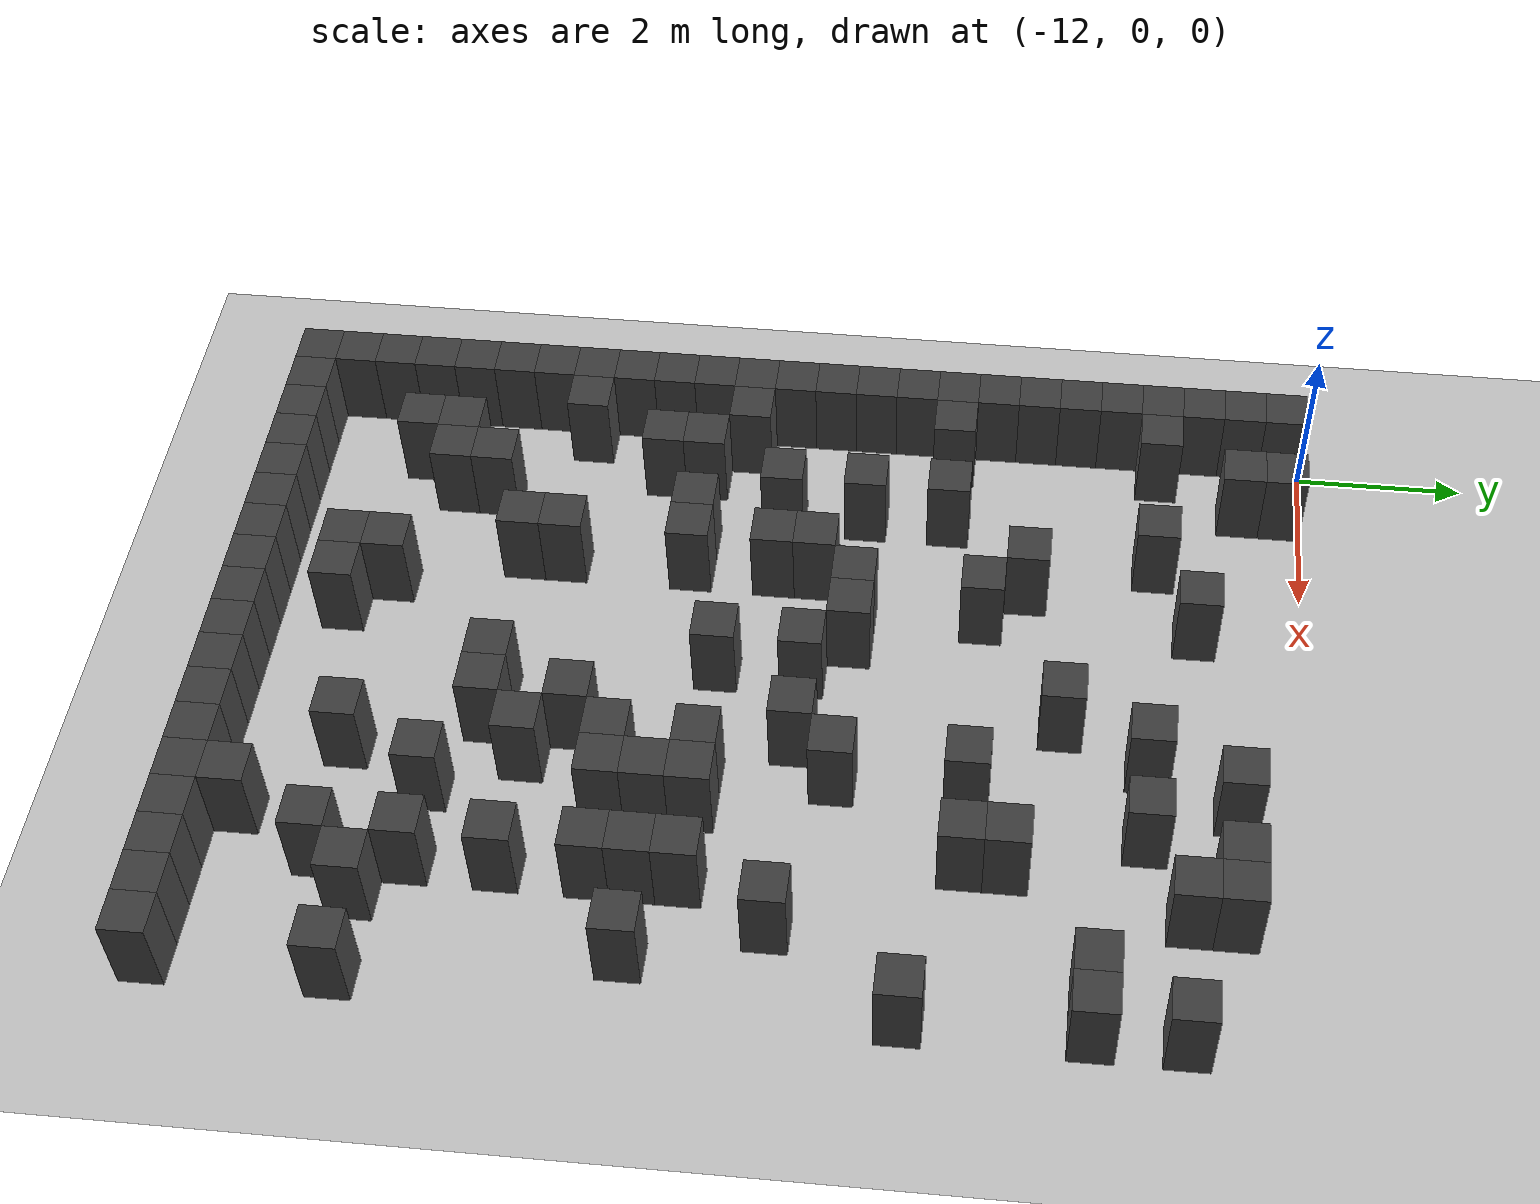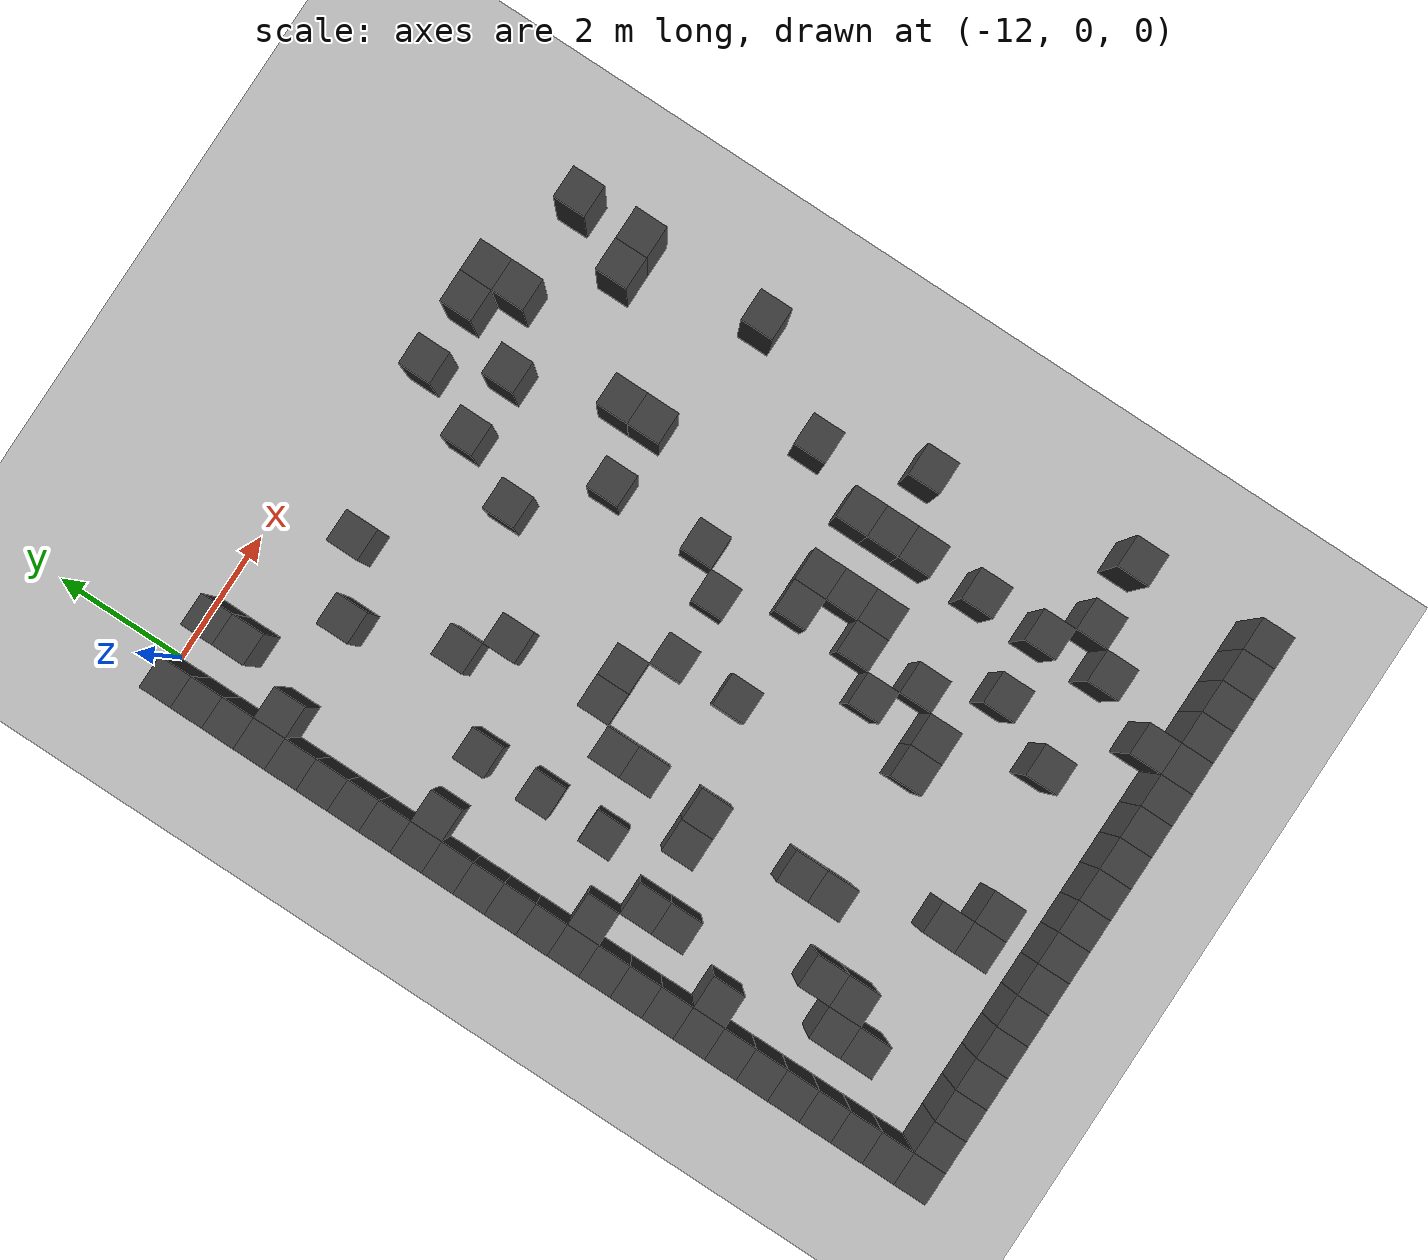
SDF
<sdf version="1.7">
 <world name="map_3158">
  <model name="ground_plane">
   <static>true</static>
   <link name="link">
    <collision name="collision">
     <geometry><plane><normal>0 0 1</normal><size>200 200</size></plane></geometry>
    </collision>
    <visual name="visual">
     <geometry><plane><normal>0 0 1</normal><size>200 200</size></plane></geometry>
     <material><ambient>0.8 0.8 0.8 1</ambient><diffuse>0.8 0.8 0.8 1</diffuse></material>
    </visual>
   </link>
  </model>
  <model name="maze_environment">
   <static>true</static>
   <link name="wall_278">
    <pose>-12.250 -0.250 0.500 0 0 0</pose>
    <collision name="col"><geometry><box><size>0.5 0.5 1.0</size></box></geometry></collision>
    <visual name="vis">
     <geometry><box><size>0.5 0.5 1.0</size></box></geometry>
     <material><ambient>0.15 0.15 0.15 1</ambient><diffuse>0.25 0.25 0.25 1</diffuse></material>
    </visual>
   </link>
   <link name="wall_279">
    <pose>-11.250 -0.250 0.500 0 0 0</pose>
    <collision name="col"><geometry><box><size>0.5 0.5 1.0</size></box></geometry></collision>
    <visual name="vis">
     <geometry><box><size>0.5 0.5 1.0</size></box></geometry>
     <material><ambient>0.15 0.15 0.15 1</ambient><diffuse>0.25 0.25 0.25 1</diffuse></material>
    </visual>
   </link>
   <link name="wall_291">
    <pose>-12.250 -0.750 0.500 0 0 0</pose>
    <collision name="col"><geometry><box><size>0.5 0.5 1.0</size></box></geometry></collision>
    <visual name="vis">
     <geometry><box><size>0.5 0.5 1.0</size></box></geometry>
     <material><ambient>0.15 0.15 0.15 1</ambient><diffuse>0.25 0.25 0.25 1</diffuse></material>
    </visual>
   </link>
   <link name="wall_292">
    <pose>-11.250 -0.750 0.500 0 0 0</pose>
    <collision name="col"><geometry><box><size>0.5 0.5 1.0</size></box></geometry></collision>
    <visual name="vis">
     <geometry><box><size>0.5 0.5 1.0</size></box></geometry>
     <material><ambient>0.15 0.15 0.15 1</ambient><diffuse>0.25 0.25 0.25 1</diffuse></material>
    </visual>
   </link>
   <link name="wall_293">
    <pose>-6.750 -0.750 0.500 0 0 0</pose>
    <collision name="col"><geometry><box><size>0.5 0.5 1.0</size></box></geometry></collision>
    <visual name="vis">
     <geometry><box><size>0.5 0.5 1.0</size></box></geometry>
     <material><ambient>0.15 0.15 0.15 1</ambient><diffuse>0.25 0.25 0.25 1</diffuse></material>
    </visual>
   </link>
   <link name="wall_294">
    <pose>-5.750 -0.750 0.500 0 0 0</pose>
    <collision name="col"><geometry><box><size>0.5 0.5 1.0</size></box></geometry></collision>
    <visual name="vis">
     <geometry><box><size>0.5 0.5 1.0</size></box></geometry>
     <material><ambient>0.15 0.15 0.15 1</ambient><diffuse>0.25 0.25 0.25 1</diffuse></material>
    </visual>
   </link>
   <link name="wall_295">
    <pose>-5.250 -0.750 0.500 0 0 0</pose>
    <collision name="col"><geometry><box><size>0.5 0.5 1.0</size></box></geometry></collision>
    <visual name="vis">
     <geometry><box><size>0.5 0.5 1.0</size></box></geometry>
     <material><ambient>0.15 0.15 0.15 1</ambient><diffuse>0.25 0.25 0.25 1</diffuse></material>
    </visual>
   </link>
   <link name="wall_300">
    <pose>-12.250 -1.250 0.500 0 0 0</pose>
    <collision name="col"><geometry><box><size>0.5 0.5 1.0</size></box></geometry></collision>
    <visual name="vis">
     <geometry><box><size>0.5 0.5 1.0</size></box></geometry>
     <material><ambient>0.15 0.15 0.15 1</ambient><diffuse>0.25 0.25 0.25 1</diffuse></material>
    </visual>
   </link>
   <link name="wall_301">
    <pose>-9.250 -1.250 0.500 0 0 0</pose>
    <collision name="col"><geometry><box><size>0.5 0.5 1.0</size></box></geometry></collision>
    <visual name="vis">
     <geometry><box><size>0.5 0.5 1.0</size></box></geometry>
     <material><ambient>0.15 0.15 0.15 1</ambient><diffuse>0.25 0.25 0.25 1</diffuse></material>
    </visual>
   </link>
   <link name="wall_302">
    <pose>-5.250 -1.250 0.500 0 0 0</pose>
    <collision name="col"><geometry><box><size>0.5 0.5 1.0</size></box></geometry></collision>
    <visual name="vis">
     <geometry><box><size>0.5 0.5 1.0</size></box></geometry>
     <material><ambient>0.15 0.15 0.15 1</ambient><diffuse>0.25 0.25 0.25 1</diffuse></material>
    </visual>
   </link>
   <link name="wall_303">
    <pose>-3.750 -1.250 0.500 0 0 0</pose>
    <collision name="col"><geometry><box><size>0.5 0.5 1.0</size></box></geometry></collision>
    <visual name="vis">
     <geometry><box><size>0.5 0.5 1.0</size></box></geometry>
     <material><ambient>0.15 0.15 0.15 1</ambient><diffuse>0.25 0.25 0.25 1</diffuse></material>
    </visual>
   </link>
   <link name="wall_308">
    <pose>-12.250 -1.750 0.500 0 0 0</pose>
    <collision name="col"><geometry><box><size>0.5 0.5 1.0</size></box></geometry></collision>
    <visual name="vis">
     <geometry><box><size>0.5 0.5 1.0</size></box></geometry>
     <material><ambient>0.15 0.15 0.15 1</ambient><diffuse>0.25 0.25 0.25 1</diffuse></material>
    </visual>
   </link>
   <link name="wall_309">
    <pose>-11.750 -1.750 0.500 0 0 0</pose>
    <collision name="col"><geometry><box><size>0.5 0.5 1.0</size></box></geometry></collision>
    <visual name="vis">
     <geometry><box><size>0.5 0.5 1.0</size></box></geometry>
     <material><ambient>0.15 0.15 0.15 1</ambient><diffuse>0.25 0.25 0.25 1</diffuse></material>
    </visual>
   </link>
   <link name="wall_310">
    <pose>-10.250 -1.750 0.500 0 0 0</pose>
    <collision name="col"><geometry><box><size>0.5 0.5 1.0</size></box></geometry></collision>
    <visual name="vis">
     <geometry><box><size>0.5 0.5 1.0</size></box></geometry>
     <material><ambient>0.15 0.15 0.15 1</ambient><diffuse>0.25 0.25 0.25 1</diffuse></material>
    </visual>
   </link>
   <link name="wall_311">
    <pose>-7.250 -1.750 0.500 0 0 0</pose>
    <collision name="col"><geometry><box><size>0.5 0.5 1.0</size></box></geometry></collision>
    <visual name="vis">
     <geometry><box><size>0.5 0.5 1.0</size></box></geometry>
     <material><ambient>0.15 0.15 0.15 1</ambient><diffuse>0.25 0.25 0.25 1</diffuse></material>
    </visual>
   </link>
   <link name="wall_312">
    <pose>-6.250 -1.750 0.500 0 0 0</pose>
    <collision name="col"><geometry><box><size>0.5 0.5 1.0</size></box></geometry></collision>
    <visual name="vis">
     <geometry><box><size>0.5 0.5 1.0</size></box></geometry>
     <material><ambient>0.15 0.15 0.15 1</ambient><diffuse>0.25 0.25 0.25 1</diffuse></material>
    </visual>
   </link>
   <link name="wall_316">
    <pose>-12.250 -2.250 0.500 0 0 0</pose>
    <collision name="col"><geometry><box><size>0.5 0.5 1.0</size></box></geometry></collision>
    <visual name="vis">
     <geometry><box><size>0.5 0.5 1.0</size></box></geometry>
     <material><ambient>0.15 0.15 0.15 1</ambient><diffuse>0.25 0.25 0.25 1</diffuse></material>
    </visual>
   </link>
   <link name="wall_317">
    <pose>-4.250 -2.250 0.500 0 0 0</pose>
    <collision name="col"><geometry><box><size>0.5 0.5 1.0</size></box></geometry></collision>
    <visual name="vis">
     <geometry><box><size>0.5 0.5 1.0</size></box></geometry>
     <material><ambient>0.15 0.15 0.15 1</ambient><diffuse>0.25 0.25 0.25 1</diffuse></material>
    </visual>
   </link>
   <link name="wall_318">
    <pose>-3.750 -2.250 0.500 0 0 0</pose>
    <collision name="col"><geometry><box><size>0.5 0.5 1.0</size></box></geometry></collision>
    <visual name="vis">
     <geometry><box><size>0.5 0.5 1.0</size></box></geometry>
     <material><ambient>0.15 0.15 0.15 1</ambient><diffuse>0.25 0.25 0.25 1</diffuse></material>
    </visual>
   </link>
   <link name="wall_325">
    <pose>-12.250 -2.750 0.500 0 0 0</pose>
    <collision name="col"><geometry><box><size>0.5 0.5 1.0</size></box></geometry></collision>
    <visual name="vis">
     <geometry><box><size>0.5 0.5 1.0</size></box></geometry>
     <material><ambient>0.15 0.15 0.15 1</ambient><diffuse>0.25 0.25 0.25 1</diffuse></material>
    </visual>
   </link>
   <link name="wall_326">
    <pose>-7.750 -2.750 0.500 0 0 0</pose>
    <collision name="col"><geometry><box><size>0.5 0.5 1.0</size></box></geometry></collision>
    <visual name="vis">
     <geometry><box><size>0.5 0.5 1.0</size></box></geometry>
     <material><ambient>0.15 0.15 0.15 1</ambient><diffuse>0.25 0.25 0.25 1</diffuse></material>
    </visual>
   </link>
   <link name="wall_334">
    <pose>-12.250 -3.250 0.500 0 0 0</pose>
    <collision name="col"><geometry><box><size>0.5 0.5 1.0</size></box></geometry></collision>
    <visual name="vis">
     <geometry><box><size>0.5 0.5 1.0</size></box></geometry>
     <material><ambient>0.15 0.15 0.15 1</ambient><diffuse>0.25 0.25 0.25 1</diffuse></material>
    </visual>
   </link>
   <link name="wall_335">
    <pose>-9.750 -3.250 0.500 0 0 0</pose>
    <collision name="col"><geometry><box><size>0.5 0.5 1.0</size></box></geometry></collision>
    <visual name="vis">
     <geometry><box><size>0.5 0.5 1.0</size></box></geometry>
     <material><ambient>0.15 0.15 0.15 1</ambient><diffuse>0.25 0.25 0.25 1</diffuse></material>
    </visual>
   </link>
   <link name="wall_336">
    <pose>-5.750 -3.250 0.500 0 0 0</pose>
    <collision name="col"><geometry><box><size>0.5 0.5 1.0</size></box></geometry></collision>
    <visual name="vis">
     <geometry><box><size>0.5 0.5 1.0</size></box></geometry>
     <material><ambient>0.15 0.15 0.15 1</ambient><diffuse>0.25 0.25 0.25 1</diffuse></material>
    </visual>
   </link>
   <link name="wall_344">
    <pose>-12.250 -3.750 0.500 0 0 0</pose>
    <collision name="col"><geometry><box><size>0.5 0.5 1.0</size></box></geometry></collision>
    <visual name="vis">
     <geometry><box><size>0.5 0.5 1.0</size></box></geometry>
     <material><ambient>0.15 0.15 0.15 1</ambient><diffuse>0.25 0.25 0.25 1</diffuse></material>
    </visual>
   </link>
   <link name="wall_345">
    <pose>-9.250 -3.750 0.500 0 0 0</pose>
    <collision name="col"><geometry><box><size>0.5 0.5 1.0</size></box></geometry></collision>
    <visual name="vis">
     <geometry><box><size>0.5 0.5 1.0</size></box></geometry>
     <material><ambient>0.15 0.15 0.15 1</ambient><diffuse>0.25 0.25 0.25 1</diffuse></material>
    </visual>
   </link>
   <link name="wall_346">
    <pose>-6.750 -3.750 0.500 0 0 0</pose>
    <collision name="col"><geometry><box><size>0.5 0.5 1.0</size></box></geometry></collision>
    <visual name="vis">
     <geometry><box><size>0.5 0.5 1.0</size></box></geometry>
     <material><ambient>0.15 0.15 0.15 1</ambient><diffuse>0.25 0.25 0.25 1</diffuse></material>
    </visual>
   </link>
   <link name="wall_347">
    <pose>-5.750 -3.750 0.500 0 0 0</pose>
    <collision name="col"><geometry><box><size>0.5 0.5 1.0</size></box></geometry></collision>
    <visual name="vis">
     <geometry><box><size>0.5 0.5 1.0</size></box></geometry>
     <material><ambient>0.15 0.15 0.15 1</ambient><diffuse>0.25 0.25 0.25 1</diffuse></material>
    </visual>
   </link>
   <link name="wall_354">
    <pose>-12.250 -4.250 0.500 0 0 0</pose>
    <collision name="col"><geometry><box><size>0.5 0.5 1.0</size></box></geometry></collision>
    <visual name="vis">
     <geometry><box><size>0.5 0.5 1.0</size></box></geometry>
     <material><ambient>0.15 0.15 0.15 1</ambient><diffuse>0.25 0.25 0.25 1</diffuse></material>
    </visual>
   </link>
   <link name="wall_355">
    <pose>-11.750 -4.250 0.500 0 0 0</pose>
    <collision name="col"><geometry><box><size>0.5 0.5 1.0</size></box></geometry></collision>
    <visual name="vis">
     <geometry><box><size>0.5 0.5 1.0</size></box></geometry>
     <material><ambient>0.15 0.15 0.15 1</ambient><diffuse>0.25 0.25 0.25 1</diffuse></material>
    </visual>
   </link>
   <link name="wall_356">
    <pose>-10.750 -4.250 0.500 0 0 0</pose>
    <collision name="col"><geometry><box><size>0.5 0.5 1.0</size></box></geometry></collision>
    <visual name="vis">
     <geometry><box><size>0.5 0.5 1.0</size></box></geometry>
     <material><ambient>0.15 0.15 0.15 1</ambient><diffuse>0.25 0.25 0.25 1</diffuse></material>
    </visual>
   </link>
   <link name="wall_357">
    <pose>-3.750 -4.250 0.500 0 0 0</pose>
    <collision name="col"><geometry><box><size>0.5 0.5 1.0</size></box></geometry></collision>
    <visual name="vis">
     <geometry><box><size>0.5 0.5 1.0</size></box></geometry>
     <material><ambient>0.15 0.15 0.15 1</ambient><diffuse>0.25 0.25 0.25 1</diffuse></material>
    </visual>
   </link>
   <link name="wall_362">
    <pose>-12.250 -4.750 0.500 0 0 0</pose>
    <collision name="col"><geometry><box><size>0.5 0.5 1.0</size></box></geometry></collision>
    <visual name="vis">
     <geometry><box><size>0.5 0.5 1.0</size></box></geometry>
     <material><ambient>0.15 0.15 0.15 1</ambient><diffuse>0.25 0.25 0.25 1</diffuse></material>
    </visual>
   </link>
   <link name="wall_365">
    <pose>-12.250 -5.250 0.500 0 0 0</pose>
    <collision name="col"><geometry><box><size>0.5 0.5 1.0</size></box></geometry></collision>
    <visual name="vis">
     <geometry><box><size>0.5 0.5 1.0</size></box></geometry>
     <material><ambient>0.15 0.15 0.15 1</ambient><diffuse>0.25 0.25 0.25 1</diffuse></material>
    </visual>
   </link>
   <link name="wall_366">
    <pose>-10.750 -5.250 0.500 0 0 0</pose>
    <collision name="col"><geometry><box><size>0.5 0.5 1.0</size></box></geometry></collision>
    <visual name="vis">
     <geometry><box><size>0.5 0.5 1.0</size></box></geometry>
     <material><ambient>0.15 0.15 0.15 1</ambient><diffuse>0.25 0.25 0.25 1</diffuse></material>
    </visual>
   </link>
   <link name="wall_367">
    <pose>-9.250 -5.250 0.500 0 0 0</pose>
    <collision name="col"><geometry><box><size>0.5 0.5 1.0</size></box></geometry></collision>
    <visual name="vis">
     <geometry><box><size>0.5 0.5 1.0</size></box></geometry>
     <material><ambient>0.15 0.15 0.15 1</ambient><diffuse>0.25 0.25 0.25 1</diffuse></material>
    </visual>
   </link>
   <link name="wall_368">
    <pose>-8.750 -5.250 0.500 0 0 0</pose>
    <collision name="col"><geometry><box><size>0.5 0.5 1.0</size></box></geometry></collision>
    <visual name="vis">
     <geometry><box><size>0.5 0.5 1.0</size></box></geometry>
     <material><ambient>0.15 0.15 0.15 1</ambient><diffuse>0.25 0.25 0.25 1</diffuse></material>
    </visual>
   </link>
   <link name="wall_369">
    <pose>-6.750 -5.250 0.500 0 0 0</pose>
    <collision name="col"><geometry><box><size>0.5 0.5 1.0</size></box></geometry></collision>
    <visual name="vis">
     <geometry><box><size>0.5 0.5 1.0</size></box></geometry>
     <material><ambient>0.15 0.15 0.15 1</ambient><diffuse>0.25 0.25 0.25 1</diffuse></material>
    </visual>
   </link>
   <link name="wall_378">
    <pose>-12.250 -5.750 0.500 0 0 0</pose>
    <collision name="col"><geometry><box><size>0.5 0.5 1.0</size></box></geometry></collision>
    <visual name="vis">
     <geometry><box><size>0.5 0.5 1.0</size></box></geometry>
     <material><ambient>0.15 0.15 0.15 1</ambient><diffuse>0.25 0.25 0.25 1</diffuse></material>
    </visual>
   </link>
   <link name="wall_379">
    <pose>-9.750 -5.750 0.500 0 0 0</pose>
    <collision name="col"><geometry><box><size>0.5 0.5 1.0</size></box></geometry></collision>
    <visual name="vis">
     <geometry><box><size>0.5 0.5 1.0</size></box></geometry>
     <material><ambient>0.15 0.15 0.15 1</ambient><diffuse>0.25 0.25 0.25 1</diffuse></material>
    </visual>
   </link>
   <link name="wall_380">
    <pose>-8.250 -5.750 0.500 0 0 0</pose>
    <collision name="col"><geometry><box><size>0.5 0.5 1.0</size></box></geometry></collision>
    <visual name="vis">
     <geometry><box><size>0.5 0.5 1.0</size></box></geometry>
     <material><ambient>0.15 0.15 0.15 1</ambient><diffuse>0.25 0.25 0.25 1</diffuse></material>
    </visual>
   </link>
   <link name="wall_381">
    <pose>-7.250 -5.750 0.500 0 0 0</pose>
    <collision name="col"><geometry><box><size>0.5 0.5 1.0</size></box></geometry></collision>
    <visual name="vis">
     <geometry><box><size>0.5 0.5 1.0</size></box></geometry>
     <material><ambient>0.15 0.15 0.15 1</ambient><diffuse>0.25 0.25 0.25 1</diffuse></material>
    </visual>
   </link>
   <link name="wall_382">
    <pose>-4.750 -5.750 0.500 0 0 0</pose>
    <collision name="col"><geometry><box><size>0.5 0.5 1.0</size></box></geometry></collision>
    <visual name="vis">
     <geometry><box><size>0.5 0.5 1.0</size></box></geometry>
     <material><ambient>0.15 0.15 0.15 1</ambient><diffuse>0.25 0.25 0.25 1</diffuse></material>
    </visual>
   </link>
   <link name="wall_388">
    <pose>-12.250 -6.250 0.500 0 0 0</pose>
    <collision name="col"><geometry><box><size>0.5 0.5 1.0</size></box></geometry></collision>
    <visual name="vis">
     <geometry><box><size>0.5 0.5 1.0</size></box></geometry>
     <material><ambient>0.15 0.15 0.15 1</ambient><diffuse>0.25 0.25 0.25 1</diffuse></material>
    </visual>
   </link>
   <link name="wall_389">
    <pose>-10.750 -6.250 0.500 0 0 0</pose>
    <collision name="col"><geometry><box><size>0.5 0.5 1.0</size></box></geometry></collision>
    <visual name="vis">
     <geometry><box><size>0.5 0.5 1.0</size></box></geometry>
     <material><ambient>0.15 0.15 0.15 1</ambient><diffuse>0.25 0.25 0.25 1</diffuse></material>
    </visual>
   </link>
   <link name="wall_390">
    <pose>-9.750 -6.250 0.500 0 0 0</pose>
    <collision name="col"><geometry><box><size>0.5 0.5 1.0</size></box></geometry></collision>
    <visual name="vis">
     <geometry><box><size>0.5 0.5 1.0</size></box></geometry>
     <material><ambient>0.15 0.15 0.15 1</ambient><diffuse>0.25 0.25 0.25 1</diffuse></material>
    </visual>
   </link>
   <link name="wall_397">
    <pose>-12.250 -6.750 0.500 0 0 0</pose>
    <collision name="col"><geometry><box><size>0.5 0.5 1.0</size></box></geometry></collision>
    <visual name="vis">
     <geometry><box><size>0.5 0.5 1.0</size></box></geometry>
     <material><ambient>0.15 0.15 0.15 1</ambient><diffuse>0.25 0.25 0.25 1</diffuse></material>
    </visual>
   </link>
   <link name="wall_398">
    <pose>-11.750 -6.750 0.500 0 0 0</pose>
    <collision name="col"><geometry><box><size>0.5 0.5 1.0</size></box></geometry></collision>
    <visual name="vis">
     <geometry><box><size>0.5 0.5 1.0</size></box></geometry>
     <material><ambient>0.15 0.15 0.15 1</ambient><diffuse>0.25 0.25 0.25 1</diffuse></material>
    </visual>
   </link>
   <link name="wall_399">
    <pose>-8.250 -6.750 0.500 0 0 0</pose>
    <collision name="col"><geometry><box><size>0.5 0.5 1.0</size></box></geometry></collision>
    <visual name="vis">
     <geometry><box><size>0.5 0.5 1.0</size></box></geometry>
     <material><ambient>0.15 0.15 0.15 1</ambient><diffuse>0.25 0.25 0.25 1</diffuse></material>
    </visual>
   </link>
   <link name="wall_400">
    <pose>-6.750 -6.750 0.500 0 0 0</pose>
    <collision name="col"><geometry><box><size>0.5 0.5 1.0</size></box></geometry></collision>
    <visual name="vis">
     <geometry><box><size>0.5 0.5 1.0</size></box></geometry>
     <material><ambient>0.15 0.15 0.15 1</ambient><diffuse>0.25 0.25 0.25 1</diffuse></material>
    </visual>
   </link>
   <link name="wall_401">
    <pose>-6.250 -6.750 0.500 0 0 0</pose>
    <collision name="col"><geometry><box><size>0.5 0.5 1.0</size></box></geometry></collision>
    <visual name="vis">
     <geometry><box><size>0.5 0.5 1.0</size></box></geometry>
     <material><ambient>0.15 0.15 0.15 1</ambient><diffuse>0.25 0.25 0.25 1</diffuse></material>
    </visual>
   </link>
   <link name="wall_402">
    <pose>-5.250 -6.750 0.500 0 0 0</pose>
    <collision name="col"><geometry><box><size>0.5 0.5 1.0</size></box></geometry></collision>
    <visual name="vis">
     <geometry><box><size>0.5 0.5 1.0</size></box></geometry>
     <material><ambient>0.15 0.15 0.15 1</ambient><diffuse>0.25 0.25 0.25 1</diffuse></material>
    </visual>
   </link>
   <link name="wall_408">
    <pose>-12.250 -7.250 0.500 0 0 0</pose>
    <collision name="col"><geometry><box><size>0.5 0.5 1.0</size></box></geometry></collision>
    <visual name="vis">
     <geometry><box><size>0.5 0.5 1.0</size></box></geometry>
     <material><ambient>0.15 0.15 0.15 1</ambient><diffuse>0.25 0.25 0.25 1</diffuse></material>
    </visual>
   </link>
   <link name="wall_409">
    <pose>-11.250 -7.250 0.500 0 0 0</pose>
    <collision name="col"><geometry><box><size>0.5 0.5 1.0</size></box></geometry></collision>
    <visual name="vis">
     <geometry><box><size>0.5 0.5 1.0</size></box></geometry>
     <material><ambient>0.15 0.15 0.15 1</ambient><diffuse>0.25 0.25 0.25 1</diffuse></material>
    </visual>
   </link>
   <link name="wall_410">
    <pose>-10.250 -7.250 0.500 0 0 0</pose>
    <collision name="col"><geometry><box><size>0.5 0.5 1.0</size></box></geometry></collision>
    <visual name="vis">
     <geometry><box><size>0.5 0.5 1.0</size></box></geometry>
     <material><ambient>0.15 0.15 0.15 1</ambient><diffuse>0.25 0.25 0.25 1</diffuse></material>
    </visual>
   </link>
   <link name="wall_411">
    <pose>-9.750 -7.250 0.500 0 0 0</pose>
    <collision name="col"><geometry><box><size>0.5 0.5 1.0</size></box></geometry></collision>
    <visual name="vis">
     <geometry><box><size>0.5 0.5 1.0</size></box></geometry>
     <material><ambient>0.15 0.15 0.15 1</ambient><diffuse>0.25 0.25 0.25 1</diffuse></material>
    </visual>
   </link>
   <link name="wall_412">
    <pose>-6.250 -7.250 0.500 0 0 0</pose>
    <collision name="col"><geometry><box><size>0.5 0.5 1.0</size></box></geometry></collision>
    <visual name="vis">
     <geometry><box><size>0.5 0.5 1.0</size></box></geometry>
     <material><ambient>0.15 0.15 0.15 1</ambient><diffuse>0.25 0.25 0.25 1</diffuse></material>
    </visual>
   </link>
   <link name="wall_413">
    <pose>-5.250 -7.250 0.500 0 0 0</pose>
    <collision name="col"><geometry><box><size>0.5 0.5 1.0</size></box></geometry></collision>
    <visual name="vis">
     <geometry><box><size>0.5 0.5 1.0</size></box></geometry>
     <material><ambient>0.15 0.15 0.15 1</ambient><diffuse>0.25 0.25 0.25 1</diffuse></material>
    </visual>
   </link>
   <link name="wall_414">
    <pose>-4.250 -7.250 0.500 0 0 0</pose>
    <collision name="col"><geometry><box><size>0.5 0.5 1.0</size></box></geometry></collision>
    <visual name="vis">
     <geometry><box><size>0.5 0.5 1.0</size></box></geometry>
     <material><ambient>0.15 0.15 0.15 1</ambient><diffuse>0.25 0.25 0.25 1</diffuse></material>
    </visual>
   </link>
   <link name="wall_420">
    <pose>-12.250 -7.750 0.500 0 0 0</pose>
    <collision name="col"><geometry><box><size>0.5 0.5 1.0</size></box></geometry></collision>
    <visual name="vis">
     <geometry><box><size>0.5 0.5 1.0</size></box></geometry>
     <material><ambient>0.15 0.15 0.15 1</ambient><diffuse>0.25 0.25 0.25 1</diffuse></material>
    </visual>
   </link>
   <link name="wall_421">
    <pose>-11.250 -7.750 0.500 0 0 0</pose>
    <collision name="col"><geometry><box><size>0.5 0.5 1.0</size></box></geometry></collision>
    <visual name="vis">
     <geometry><box><size>0.5 0.5 1.0</size></box></geometry>
     <material><ambient>0.15 0.15 0.15 1</ambient><diffuse>0.25 0.25 0.25 1</diffuse></material>
    </visual>
   </link>
   <link name="wall_422">
    <pose>-6.750 -7.750 0.500 0 0 0</pose>
    <collision name="col"><geometry><box><size>0.5 0.5 1.0</size></box></geometry></collision>
    <visual name="vis">
     <geometry><box><size>0.5 0.5 1.0</size></box></geometry>
     <material><ambient>0.15 0.15 0.15 1</ambient><diffuse>0.25 0.25 0.25 1</diffuse></material>
    </visual>
   </link>
   <link name="wall_423">
    <pose>-6.250 -7.750 0.500 0 0 0</pose>
    <collision name="col"><geometry><box><size>0.5 0.5 1.0</size></box></geometry></collision>
    <visual name="vis">
     <geometry><box><size>0.5 0.5 1.0</size></box></geometry>
     <material><ambient>0.15 0.15 0.15 1</ambient><diffuse>0.25 0.25 0.25 1</diffuse></material>
    </visual>
   </link>
   <link name="wall_424">
    <pose>-5.250 -7.750 0.500 0 0 0</pose>
    <collision name="col"><geometry><box><size>0.5 0.5 1.0</size></box></geometry></collision>
    <visual name="vis">
     <geometry><box><size>0.5 0.5 1.0</size></box></geometry>
     <material><ambient>0.15 0.15 0.15 1</ambient><diffuse>0.25 0.25 0.25 1</diffuse></material>
    </visual>
   </link>
   <link name="wall_433">
    <pose>-12.250 -8.250 0.500 0 0 0</pose>
    <collision name="col"><geometry><box><size>0.5 0.5 1.0</size></box></geometry></collision>
    <visual name="vis">
     <geometry><box><size>0.5 0.5 1.0</size></box></geometry>
     <material><ambient>0.15 0.15 0.15 1</ambient><diffuse>0.25 0.25 0.25 1</diffuse></material>
    </visual>
   </link>
   <link name="wall_434">
    <pose>-7.250 -8.250 0.500 0 0 0</pose>
    <collision name="col"><geometry><box><size>0.5 0.5 1.0</size></box></geometry></collision>
    <visual name="vis">
     <geometry><box><size>0.5 0.5 1.0</size></box></geometry>
     <material><ambient>0.15 0.15 0.15 1</ambient><diffuse>0.25 0.25 0.25 1</diffuse></material>
    </visual>
   </link>
   <link name="wall_442">
    <pose>-12.250 -8.750 0.500 0 0 0</pose>
    <collision name="col"><geometry><box><size>0.5 0.5 1.0</size></box></geometry></collision>
    <visual name="vis">
     <geometry><box><size>0.5 0.5 1.0</size></box></geometry>
     <material><ambient>0.15 0.15 0.15 1</ambient><diffuse>0.25 0.25 0.25 1</diffuse></material>
    </visual>
   </link>
   <link name="wall_443">
    <pose>-11.750 -8.750 0.500 0 0 0</pose>
    <collision name="col"><geometry><box><size>0.5 0.5 1.0</size></box></geometry></collision>
    <visual name="vis">
     <geometry><box><size>0.5 0.5 1.0</size></box></geometry>
     <material><ambient>0.15 0.15 0.15 1</ambient><diffuse>0.25 0.25 0.25 1</diffuse></material>
    </visual>
   </link>
   <link name="wall_444">
    <pose>-9.750 -8.750 0.500 0 0 0</pose>
    <collision name="col"><geometry><box><size>0.5 0.5 1.0</size></box></geometry></collision>
    <visual name="vis">
     <geometry><box><size>0.5 0.5 1.0</size></box></geometry>
     <material><ambient>0.15 0.15 0.15 1</ambient><diffuse>0.25 0.25 0.25 1</diffuse></material>
    </visual>
   </link>
   <link name="wall_445">
    <pose>-6.750 -8.750 0.500 0 0 0</pose>
    <collision name="col"><geometry><box><size>0.5 0.5 1.0</size></box></geometry></collision>
    <visual name="vis">
     <geometry><box><size>0.5 0.5 1.0</size></box></geometry>
     <material><ambient>0.15 0.15 0.15 1</ambient><diffuse>0.25 0.25 0.25 1</diffuse></material>
    </visual>
   </link>
   <link name="wall_446">
    <pose>-5.250 -8.750 0.500 0 0 0</pose>
    <collision name="col"><geometry><box><size>0.5 0.5 1.0</size></box></geometry></collision>
    <visual name="vis">
     <geometry><box><size>0.5 0.5 1.0</size></box></geometry>
     <material><ambient>0.15 0.15 0.15 1</ambient><diffuse>0.25 0.25 0.25 1</diffuse></material>
    </visual>
   </link>
   <link name="wall_455">
    <pose>-12.250 -9.250 0.500 0 0 0</pose>
    <collision name="col"><geometry><box><size>0.5 0.5 1.0</size></box></geometry></collision>
    <visual name="vis">
     <geometry><box><size>0.5 0.5 1.0</size></box></geometry>
     <material><ambient>0.15 0.15 0.15 1</ambient><diffuse>0.25 0.25 0.25 1</diffuse></material>
    </visual>
   </link>
   <link name="wall_456">
    <pose>-9.750 -9.250 0.500 0 0 0</pose>
    <collision name="col"><geometry><box><size>0.5 0.5 1.0</size></box></geometry></collision>
    <visual name="vis">
     <geometry><box><size>0.5 0.5 1.0</size></box></geometry>
     <material><ambient>0.15 0.15 0.15 1</ambient><diffuse>0.25 0.25 0.25 1</diffuse></material>
    </visual>
   </link>
   <link name="wall_457">
    <pose>-7.750 -9.250 0.500 0 0 0</pose>
    <collision name="col"><geometry><box><size>0.5 0.5 1.0</size></box></geometry></collision>
    <visual name="vis">
     <geometry><box><size>0.5 0.5 1.0</size></box></geometry>
     <material><ambient>0.15 0.15 0.15 1</ambient><diffuse>0.25 0.25 0.25 1</diffuse></material>
    </visual>
   </link>
   <link name="wall_458">
    <pose>-7.250 -9.250 0.500 0 0 0</pose>
    <collision name="col"><geometry><box><size>0.5 0.5 1.0</size></box></geometry></collision>
    <visual name="vis">
     <geometry><box><size>0.5 0.5 1.0</size></box></geometry>
     <material><ambient>0.15 0.15 0.15 1</ambient><diffuse>0.25 0.25 0.25 1</diffuse></material>
    </visual>
   </link>
   <link name="wall_464">
    <pose>-12.250 -9.750 0.500 0 0 0</pose>
    <collision name="col"><geometry><box><size>0.5 0.5 1.0</size></box></geometry></collision>
    <visual name="vis">
     <geometry><box><size>0.5 0.5 1.0</size></box></geometry>
     <material><ambient>0.15 0.15 0.15 1</ambient><diffuse>0.25 0.25 0.25 1</diffuse></material>
    </visual>
   </link>
   <link name="wall_465">
    <pose>-10.750 -9.750 0.500 0 0 0</pose>
    <collision name="col"><geometry><box><size>0.5 0.5 1.0</size></box></geometry></collision>
    <visual name="vis">
     <geometry><box><size>0.5 0.5 1.0</size></box></geometry>
     <material><ambient>0.15 0.15 0.15 1</ambient><diffuse>0.25 0.25 0.25 1</diffuse></material>
    </visual>
   </link>
   <link name="wall_466">
    <pose>-6.250 -9.750 0.500 0 0 0</pose>
    <collision name="col"><geometry><box><size>0.5 0.5 1.0</size></box></geometry></collision>
    <visual name="vis">
     <geometry><box><size>0.5 0.5 1.0</size></box></geometry>
     <material><ambient>0.15 0.15 0.15 1</ambient><diffuse>0.25 0.25 0.25 1</diffuse></material>
    </visual>
   </link>
   <link name="wall_467">
    <pose>-5.250 -9.750 0.500 0 0 0</pose>
    <collision name="col"><geometry><box><size>0.5 0.5 1.0</size></box></geometry></collision>
    <visual name="vis">
     <geometry><box><size>0.5 0.5 1.0</size></box></geometry>
     <material><ambient>0.15 0.15 0.15 1</ambient><diffuse>0.25 0.25 0.25 1</diffuse></material>
    </visual>
   </link>
   <link name="wall_471">
    <pose>-12.250 -10.250 0.500 0 0 0</pose>
    <collision name="col"><geometry><box><size>0.5 0.5 1.0</size></box></geometry></collision>
    <visual name="vis">
     <geometry><box><size>0.5 0.5 1.0</size></box></geometry>
     <material><ambient>0.15 0.15 0.15 1</ambient><diffuse>0.25 0.25 0.25 1</diffuse></material>
    </visual>
   </link>
   <link name="wall_472">
    <pose>-11.250 -10.250 0.500 0 0 0</pose>
    <collision name="col"><geometry><box><size>0.5 0.5 1.0</size></box></geometry></collision>
    <visual name="vis">
     <geometry><box><size>0.5 0.5 1.0</size></box></geometry>
     <material><ambient>0.15 0.15 0.15 1</ambient><diffuse>0.25 0.25 0.25 1</diffuse></material>
    </visual>
   </link>
   <link name="wall_473">
    <pose>-10.750 -10.250 0.500 0 0 0</pose>
    <collision name="col"><geometry><box><size>0.5 0.5 1.0</size></box></geometry></collision>
    <visual name="vis">
     <geometry><box><size>0.5 0.5 1.0</size></box></geometry>
     <material><ambient>0.15 0.15 0.15 1</ambient><diffuse>0.25 0.25 0.25 1</diffuse></material>
    </visual>
   </link>
   <link name="wall_474">
    <pose>-4.750 -10.250 0.500 0 0 0</pose>
    <collision name="col"><geometry><box><size>0.5 0.5 1.0</size></box></geometry></collision>
    <visual name="vis">
     <geometry><box><size>0.5 0.5 1.0</size></box></geometry>
     <material><ambient>0.15 0.15 0.15 1</ambient><diffuse>0.25 0.25 0.25 1</diffuse></material>
    </visual>
   </link>
   <link name="wall_475">
    <pose>-3.750 -10.250 0.500 0 0 0</pose>
    <collision name="col"><geometry><box><size>0.5 0.5 1.0</size></box></geometry></collision>
    <visual name="vis">
     <geometry><box><size>0.5 0.5 1.0</size></box></geometry>
     <material><ambient>0.15 0.15 0.15 1</ambient><diffuse>0.25 0.25 0.25 1</diffuse></material>
    </visual>
   </link>
   <link name="wall_481">
    <pose>-12.250 -10.750 0.500 0 0 0</pose>
    <collision name="col"><geometry><box><size>0.5 0.5 1.0</size></box></geometry></collision>
    <visual name="vis">
     <geometry><box><size>0.5 0.5 1.0</size></box></geometry>
     <material><ambient>0.15 0.15 0.15 1</ambient><diffuse>0.25 0.25 0.25 1</diffuse></material>
    </visual>
   </link>
   <link name="wall_482">
    <pose>-11.250 -10.750 0.500 0 0 0</pose>
    <collision name="col"><geometry><box><size>0.5 0.5 1.0</size></box></geometry></collision>
    <visual name="vis">
     <geometry><box><size>0.5 0.5 1.0</size></box></geometry>
     <material><ambient>0.15 0.15 0.15 1</ambient><diffuse>0.25 0.25 0.25 1</diffuse></material>
    </visual>
   </link>
   <link name="wall_483">
    <pose>-9.250 -10.750 0.500 0 0 0</pose>
    <collision name="col"><geometry><box><size>0.5 0.5 1.0</size></box></geometry></collision>
    <visual name="vis">
     <geometry><box><size>0.5 0.5 1.0</size></box></geometry>
     <material><ambient>0.15 0.15 0.15 1</ambient><diffuse>0.25 0.25 0.25 1</diffuse></material>
    </visual>
   </link>
   <link name="wall_484">
    <pose>-6.750 -10.750 0.500 0 0 0</pose>
    <collision name="col"><geometry><box><size>0.5 0.5 1.0</size></box></geometry></collision>
    <visual name="vis">
     <geometry><box><size>0.5 0.5 1.0</size></box></geometry>
     <material><ambient>0.15 0.15 0.15 1</ambient><diffuse>0.25 0.25 0.25 1</diffuse></material>
    </visual>
   </link>
   <link name="wall_485">
    <pose>-5.250 -10.750 0.500 0 0 0</pose>
    <collision name="col"><geometry><box><size>0.5 0.5 1.0</size></box></geometry></collision>
    <visual name="vis">
     <geometry><box><size>0.5 0.5 1.0</size></box></geometry>
     <material><ambient>0.15 0.15 0.15 1</ambient><diffuse>0.25 0.25 0.25 1</diffuse></material>
    </visual>
   </link>
   <link name="wall_491">
    <pose>-12.250 -11.250 0.500 0 0 0</pose>
    <collision name="col"><geometry><box><size>0.5 0.5 1.0</size></box></geometry></collision>
    <visual name="vis">
     <geometry><box><size>0.5 0.5 1.0</size></box></geometry>
     <material><ambient>0.15 0.15 0.15 1</ambient><diffuse>0.25 0.25 0.25 1</diffuse></material>
    </visual>
   </link>
   <link name="wall_492">
    <pose>-9.250 -11.250 0.500 0 0 0</pose>
    <collision name="col"><geometry><box><size>0.5 0.5 1.0</size></box></geometry></collision>
    <visual name="vis">
     <geometry><box><size>0.5 0.5 1.0</size></box></geometry>
     <material><ambient>0.15 0.15 0.15 1</ambient><diffuse>0.25 0.25 0.25 1</diffuse></material>
    </visual>
   </link>
   <link name="wall_493">
    <pose>-8.750 -11.250 0.500 0 0 0</pose>
    <collision name="col"><geometry><box><size>0.5 0.5 1.0</size></box></geometry></collision>
    <visual name="vis">
     <geometry><box><size>0.5 0.5 1.0</size></box></geometry>
     <material><ambient>0.15 0.15 0.15 1</ambient><diffuse>0.25 0.25 0.25 1</diffuse></material>
    </visual>
   </link>
   <link name="wall_502">
    <pose>-12.250 -11.750 0.500 0 0 0</pose>
    <collision name="col"><geometry><box><size>0.5 0.5 1.0</size></box></geometry></collision>
    <visual name="vis">
     <geometry><box><size>0.5 0.5 1.0</size></box></geometry>
     <material><ambient>0.15 0.15 0.15 1</ambient><diffuse>0.25 0.25 0.25 1</diffuse></material>
    </visual>
   </link>
   <link name="wall_503">
    <pose>-5.750 -11.750 0.500 0 0 0</pose>
    <collision name="col"><geometry><box><size>0.5 0.5 1.0</size></box></geometry></collision>
    <visual name="vis">
     <geometry><box><size>0.5 0.5 1.0</size></box></geometry>
     <material><ambient>0.15 0.15 0.15 1</ambient><diffuse>0.25 0.25 0.25 1</diffuse></material>
    </visual>
   </link>
   <link name="wall_511">
    <pose>-12.250 -12.250 0.500 0 0 0</pose>
    <collision name="col"><geometry><box><size>0.5 0.5 1.0</size></box></geometry></collision>
    <visual name="vis">
     <geometry><box><size>0.5 0.5 1.0</size></box></geometry>
     <material><ambient>0.15 0.15 0.15 1</ambient><diffuse>0.25 0.25 0.25 1</diffuse></material>
    </visual>
   </link>
   <link name="wall_512">
    <pose>-11.750 -12.250 0.500 0 0 0</pose>
    <collision name="col"><geometry><box><size>0.5 0.5 1.0</size></box></geometry></collision>
    <visual name="vis">
     <geometry><box><size>0.5 0.5 1.0</size></box></geometry>
     <material><ambient>0.15 0.15 0.15 1</ambient><diffuse>0.25 0.25 0.25 1</diffuse></material>
    </visual>
   </link>
   <link name="wall_513">
    <pose>-11.250 -12.250 0.500 0 0 0</pose>
    <collision name="col"><geometry><box><size>0.5 0.5 1.0</size></box></geometry></collision>
    <visual name="vis">
     <geometry><box><size>0.5 0.5 1.0</size></box></geometry>
     <material><ambient>0.15 0.15 0.15 1</ambient><diffuse>0.25 0.25 0.25 1</diffuse></material>
    </visual>
   </link>
   <link name="wall_514">
    <pose>-10.750 -12.250 0.500 0 0 0</pose>
    <collision name="col"><geometry><box><size>0.5 0.5 1.0</size></box></geometry></collision>
    <visual name="vis">
     <geometry><box><size>0.5 0.5 1.0</size></box></geometry>
     <material><ambient>0.15 0.15 0.15 1</ambient><diffuse>0.25 0.25 0.25 1</diffuse></material>
    </visual>
   </link>
   <link name="wall_515">
    <pose>-10.250 -12.250 0.500 0 0 0</pose>
    <collision name="col"><geometry><box><size>0.5 0.5 1.0</size></box></geometry></collision>
    <visual name="vis">
     <geometry><box><size>0.5 0.5 1.0</size></box></geometry>
     <material><ambient>0.15 0.15 0.15 1</ambient><diffuse>0.25 0.25 0.25 1</diffuse></material>
    </visual>
   </link>
   <link name="wall_516">
    <pose>-9.750 -12.250 0.500 0 0 0</pose>
    <collision name="col"><geometry><box><size>0.5 0.5 1.0</size></box></geometry></collision>
    <visual name="vis">
     <geometry><box><size>0.5 0.5 1.0</size></box></geometry>
     <material><ambient>0.15 0.15 0.15 1</ambient><diffuse>0.25 0.25 0.25 1</diffuse></material>
    </visual>
   </link>
   <link name="wall_517">
    <pose>-9.250 -12.250 0.500 0 0 0</pose>
    <collision name="col"><geometry><box><size>0.5 0.5 1.0</size></box></geometry></collision>
    <visual name="vis">
     <geometry><box><size>0.5 0.5 1.0</size></box></geometry>
     <material><ambient>0.15 0.15 0.15 1</ambient><diffuse>0.25 0.25 0.25 1</diffuse></material>
    </visual>
   </link>
   <link name="wall_518">
    <pose>-8.750 -12.250 0.500 0 0 0</pose>
    <collision name="col"><geometry><box><size>0.5 0.5 1.0</size></box></geometry></collision>
    <visual name="vis">
     <geometry><box><size>0.5 0.5 1.0</size></box></geometry>
     <material><ambient>0.15 0.15 0.15 1</ambient><diffuse>0.25 0.25 0.25 1</diffuse></material>
    </visual>
   </link>
   <link name="wall_519">
    <pose>-8.250 -12.250 0.500 0 0 0</pose>
    <collision name="col"><geometry><box><size>0.5 0.5 1.0</size></box></geometry></collision>
    <visual name="vis">
     <geometry><box><size>0.5 0.5 1.0</size></box></geometry>
     <material><ambient>0.15 0.15 0.15 1</ambient><diffuse>0.25 0.25 0.25 1</diffuse></material>
    </visual>
   </link>
   <link name="wall_520">
    <pose>-7.750 -12.250 0.500 0 0 0</pose>
    <collision name="col"><geometry><box><size>0.5 0.5 1.0</size></box></geometry></collision>
    <visual name="vis">
     <geometry><box><size>0.5 0.5 1.0</size></box></geometry>
     <material><ambient>0.15 0.15 0.15 1</ambient><diffuse>0.25 0.25 0.25 1</diffuse></material>
    </visual>
   </link>
   <link name="wall_521">
    <pose>-7.250 -12.250 0.500 0 0 0</pose>
    <collision name="col"><geometry><box><size>0.5 0.5 1.0</size></box></geometry></collision>
    <visual name="vis">
     <geometry><box><size>0.5 0.5 1.0</size></box></geometry>
     <material><ambient>0.15 0.15 0.15 1</ambient><diffuse>0.25 0.25 0.25 1</diffuse></material>
    </visual>
   </link>
   <link name="wall_522">
    <pose>-6.750 -12.250 0.500 0 0 0</pose>
    <collision name="col"><geometry><box><size>0.5 0.5 1.0</size></box></geometry></collision>
    <visual name="vis">
     <geometry><box><size>0.5 0.5 1.0</size></box></geometry>
     <material><ambient>0.15 0.15 0.15 1</ambient><diffuse>0.25 0.25 0.25 1</diffuse></material>
    </visual>
   </link>
   <link name="wall_523">
    <pose>-6.250 -12.250 0.500 0 0 0</pose>
    <collision name="col"><geometry><box><size>0.5 0.5 1.0</size></box></geometry></collision>
    <visual name="vis">
     <geometry><box><size>0.5 0.5 1.0</size></box></geometry>
     <material><ambient>0.15 0.15 0.15 1</ambient><diffuse>0.25 0.25 0.25 1</diffuse></material>
    </visual>
   </link>
   <link name="wall_524">
    <pose>-5.750 -12.250 0.500 0 0 0</pose>
    <collision name="col"><geometry><box><size>0.5 0.5 1.0</size></box></geometry></collision>
    <visual name="vis">
     <geometry><box><size>0.5 0.5 1.0</size></box></geometry>
     <material><ambient>0.15 0.15 0.15 1</ambient><diffuse>0.25 0.25 0.25 1</diffuse></material>
    </visual>
   </link>
   <link name="wall_525">
    <pose>-5.250 -12.250 0.500 0 0 0</pose>
    <collision name="col"><geometry><box><size>0.5 0.5 1.0</size></box></geometry></collision>
    <visual name="vis">
     <geometry><box><size>0.5 0.5 1.0</size></box></geometry>
     <material><ambient>0.15 0.15 0.15 1</ambient><diffuse>0.25 0.25 0.25 1</diffuse></material>
    </visual>
   </link>
   <link name="wall_526">
    <pose>-4.750 -12.250 0.500 0 0 0</pose>
    <collision name="col"><geometry><box><size>0.5 0.5 1.0</size></box></geometry></collision>
    <visual name="vis">
     <geometry><box><size>0.5 0.5 1.0</size></box></geometry>
     <material><ambient>0.15 0.15 0.15 1</ambient><diffuse>0.25 0.25 0.25 1</diffuse></material>
    </visual>
   </link>
   <link name="wall_527">
    <pose>-4.250 -12.250 0.500 0 0 0</pose>
    <collision name="col"><geometry><box><size>0.5 0.5 1.0</size></box></geometry></collision>
    <visual name="vis">
     <geometry><box><size>0.5 0.5 1.0</size></box></geometry>
     <material><ambient>0.15 0.15 0.15 1</ambient><diffuse>0.25 0.25 0.25 1</diffuse></material>
    </visual>
   </link>
   <link name="wall_528">
    <pose>-3.750 -12.250 0.500 0 0 0</pose>
    <collision name="col"><geometry><box><size>0.5 0.5 1.0</size></box></geometry></collision>
    <visual name="vis">
     <geometry><box><size>0.5 0.5 1.0</size></box></geometry>
     <material><ambient>0.15 0.15 0.15 1</ambient><diffuse>0.25 0.25 0.25 1</diffuse></material>
    </visual>
   </link>
  </model>
 </world>
</sdf>
